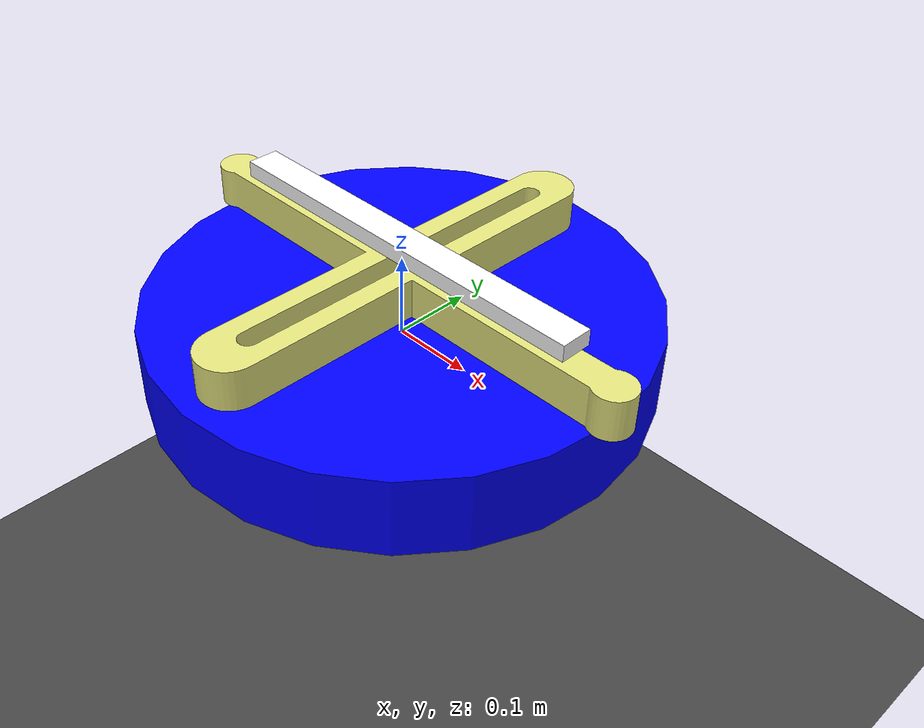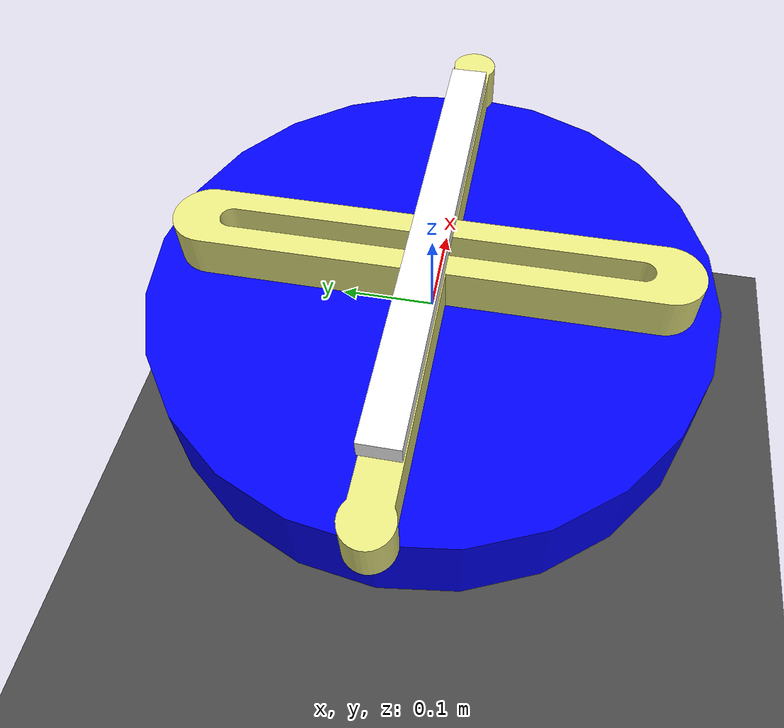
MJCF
<!-- Script that builds a scotch yoke system. It is driven along with the ScotchYoke python script which constrains the scotch and yoke to move together-->
<mujoco model="tendonFish">
    <option integrator="implicitfast" timestep="0.01" iterations="50" solver="Newton"
            tolerance="1e-10" gravity="0 0 0" density="1000" viscosity="0.001"/>

    <visual>
        <global offheight="2160" offwidth="3840" />
        <rgba haze=".3 .3 .3 1" />
    </visual>

    <!-- Environment parameters -->
    <asset>
        <mesh name="tailMesh" file="mujoco-3.3.2-windows-x86_64/model/mesh/UpdatedTail.STL" scale="0.0045 0.0045 0.0065" />
        <mesh name="headMesh" file="mujoco-3.3.2-windows-x86_64/model/mesh/FishNose.STL" scale="0.0045 0.0045 0.0065" />
        <mesh name="Yoke" file="mujoco-3.3.2-windows-x86_64\model\mesh\Yoke (stl).stl" scale=" .01 .02 .01" />
        <texture type="skybox" builtin="gradient" rgb1="0.6 0.6 0.6" rgb2="0 0 0" width="512" height="512" />
        <texture name="texplane" type="2d" builtin="checker" rgb1=".25 .25 .25" rgb2=".3 .3 .3"
                 width="512" height="512" mark="cross" markrgb=".8 .8 .8" />
        <material name="matplane" reflectance="0.3" texture="texplane" texrepeat="1 1" texuniform="true" />
    </asset>

    <default>
        <joint type="hinge" pos="0 0 0" axis="0 0 1" range="-80 80" stiffness="10" damping="0.1" />
    </default>

    <!-- World body and fish structure -->
    <worldbody>
        <camera name="fixed" pos="0.4 -1.2 1.2" xyaxes="1 0 0 0 1 1" />
        <camera name="fixedTop" pos="-0.75 0 1.5" xyaxes="0 -1 0 1 0 0.75" />
        <camera name="fixedDiag" pos="2.5 -4.0 4.0" xyaxes="0.8 0.6 0 -0.4 0.5 0.75" />
        <geom name="floor" pos="0 0 -0.5" size="0 0 1" type="plane" material="matplane" />
        <light directional="true" diffuse=".8 .8 .8" specular=".2 .2 .2" pos="0 0 5" dir="0 0 -1" />

        <body name="cam" pos="0 0 0">
            <!-- hinge joint allows free rotation -->
            <joint name="Rotor" type="hinge" axis="0 0 1" limited="false" stiffness="300" damping="800"/>

            <!-- cylinder base -->
            <geom type="cylinder" size=".3 .05" rgba="0 0 1 1" contype="1" conaffinity="1" mass="100" />

            <!-- Yoke mesh attached to cam -->
            <geom name="YokeMesh" type="mesh" mesh="Yoke" pos="0 0 .05"
            rgba=".9 .9 .5 1" mass=".25"
            quat="0.707106781187 0.707106781187 0 0"
            fluidshape="ellipsoid" contype="1" conaffinity="1"/>
        </body>

        <!-- motor body nested inside -->
        <body name="motorBody" pos="0 0 .12" quat="0.7071 0 0 -0.7071">
            <joint name="motor_slide" type="slide" axis="0 1 0" limited="true" range="-0.02 0.02" stiffness="1000" damping="1000"/>
            <geom name="motorSlide" type="box" pos="0 0 0" size="0.02 0.25 0.01" rgba="1 1 1 1" density="125"/>
            <site name="bodyLeft" pos=".01 0 0" size="0.005" rgba=".9 .6 .5 .5"/>
        </body>

    </worldbody>

    <!-- parameters to make couple the two -->
    <equality>
        <joint name="rotor_to_slide" joint1="motor_slide" joint2="Rotor" polycoef="0 -3.1831"/>
    </equality>

    <!-- defines both actuators, with -180-180 range meaning the angel of rotation for the motor-->
    <actuator>
        <velocity name="motorRotation" joint="Rotor" kv="100" ctrllimited="true" ctrlrange="-180 180" forcerange="-5000 5000"/>
        <velocity name="yokeDriver" joint="motor_slide" kv="100" ctrllimited="true" ctrlrange="-10 10" forcerange="-500 500"/>
    </actuator>

</mujoco>
